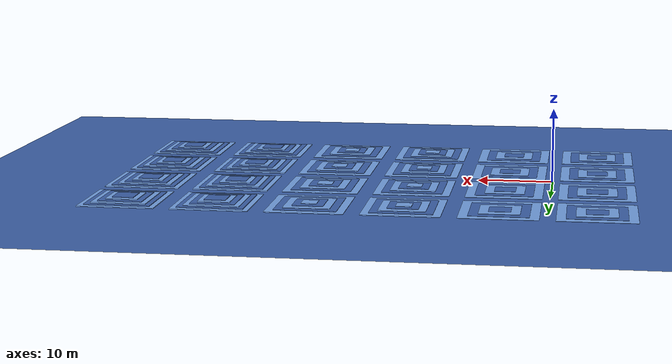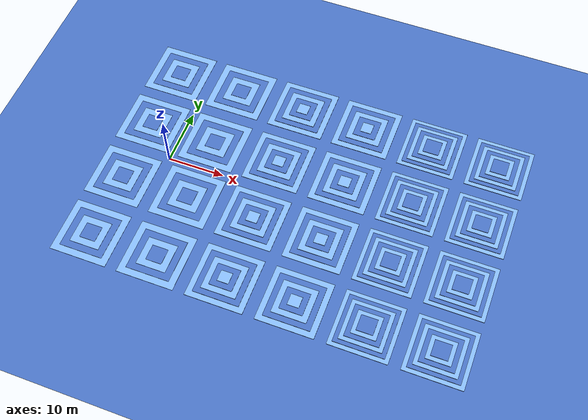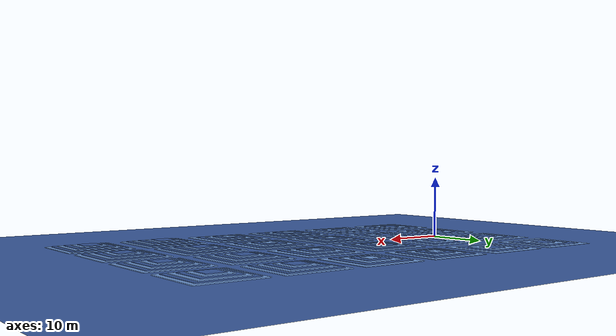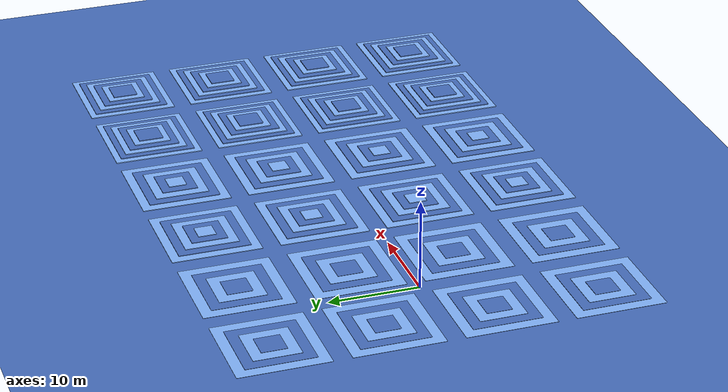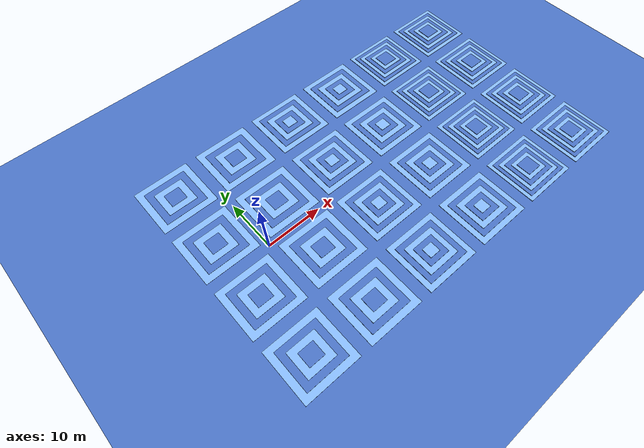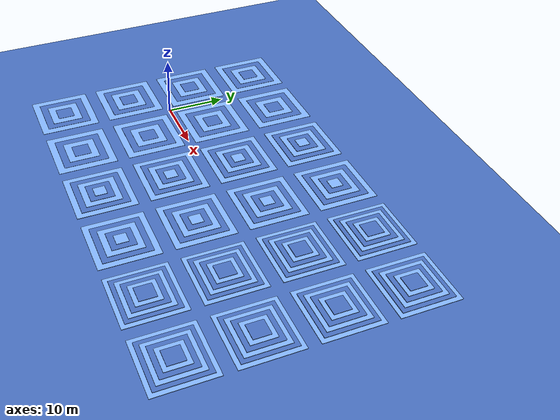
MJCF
<mujoco>
    <extension>
        <plugin plugin="mujoco.sdf.torus">
            <instance name="torus">
                <config key="radius1" value="0.077103"/>
                <config key="radius2" value="0.03"/>
            </instance>
        </plugin>
    </extension>

    <default>
        <default class="kyon_all">
            <joint armature="0.234" frictionloss="4.68" damping="1.7"/>
            <geom condim="3" solref="0.005 1.2" solimp="0.995 0.995 0.001 0.5 2" friction="0.7 0.005 0.001"/>
        </default>
        <default class="wheels">
            <joint armature="0.234" damping="1.7"/>
            <geom condim="3" solref="0.005 1.2" solimp="0.995 0.995 0.001 0.5 2" friction="0.7 0.005 0.001"/>
        </default>
        <default class="terrain">
            <geom condim="3" solref="0.004 1.2" solimp="0.995 0.995 0.001 0.5 2" friction="0.7 0.005 0.001" group="1"/>
        </default>
    </default>

    <asset>
        <mesh name="torus">
            <plugin instance="torus"/>
        </mesh>

        <texture type="skybox" builtin="gradient" rgb1="0.3 0.5 0.7" rgb2="0 0 0" width="512" height="3072"/>
        <texture type="cube" name="body" builtin="flat" mark="cross" rgb1="0.8 0.6 0.4" rgb2="0.8 0.6 0.4" markrgb="1 1 1" width="127" height="762"/>
        <texture type="2d" name="grid" builtin="checker" rgb1="0.7 0.8 0.95" rgb2="0.85 0.9 1" width="512" height="512"/>
        <material name="body" texture="body" texuniform="true" rgba="0.8 0.6 0.4 1"/>
        <material name="grid" texture="grid" texuniform="true" rgba="0.1 0.2 0.3 1"/>
        <material name="ground" texture="grid" texuniform="true" rgba="0.35 0.5 0.75 1"/>
        <material name="step_light" texture="grid" texuniform="true" rgba="0.65 0.82 1 1"/>
        <material name="step_dark" texture="grid" texuniform="true" rgba="0.35 0.5 0.75 1"/>
    </asset>
    <worldbody>
        <geom name="floor" type="plane" size="0 0 0.05" group="1" material="ground" class="terrain"/>
        <!-- Five pyramidal staircases in a row, increasing step height and decreasing tread width -->
    <!-- Five pyramidal staircases in a row, increasing step height and decreasing tread width -->
        <body name="staircourse" pos="0 0 0">
            <!-- Level 0 -->
            <body name="pyramid_lvl0_1" pos="-6 6 0">
                <geom name="lvl0_step_1_0_1" type="box" size="5.0 5.0 0.02" material="step_light" pos="0 0 0.02" class="terrain"/>
                <geom name="lvl0_step_2_0_1" type="box" size="3.8 3.8 0.02" material="step_dark" pos="0 0 0.06" class="terrain"/>
                <geom name="lvl0_step_3_0_1" type="box" size="2.6 2.6 0.02" material="step_light" pos="0 0 0.10" class="terrain"/>
                <geom name="lvl0_step_4_0_1" type="box" size="1.4 1.4 0.02" material="step_dark" pos="0 0 0.14" class="terrain"/>
            </body>
            <body name="pyramid_lvl0_2" pos="-6 -6 0">
                <geom name="lvl0_step_1_0_2" type="box" size="5.0 5.0 0.02" material="step_light" pos="0 0 0.02" class="terrain"/>
                <geom name="lvl0_step_2_0_2" type="box" size="3.8 3.8 0.02" material="step_dark" pos="0 0 0.06" class="terrain"/>
                <geom name="lvl0_step_3_0_2" type="box" size="2.6 2.6 0.02" material="step_light" pos="0 0 0.10" class="terrain"/>
                <geom name="lvl0_step_4_0_2" type="box" size="1.4 1.4 0.02" material="step_dark" pos="0 0 0.14" class="terrain"/>
            </body>
            <body name="pyramid_lvl0_3" pos="6 -6 0">
                <geom name="lvl0_step_1_0_3" type="box" size="5.0 5.0 0.02" material="step_light" pos="0 0 0.02" class="terrain"/>
                <geom name="lvl0_step_2_0_3" type="box" size="3.8 3.8 0.02" material="step_dark" pos="0 0 0.06" class="terrain"/>
                <geom name="lvl0_step_3_0_3" type="box" size="2.6 2.6 0.02" material="step_light" pos="0 0 0.10" class="terrain"/>
                <geom name="lvl0_step_4_0_3" type="box" size="1.4 1.4 0.02" material="step_dark" pos="0 0 0.14" class="terrain"/>
            </body>
            <body name="pyramid_lvl0_4" pos="6 6 0">
                <geom name="lvl0_step_1_0_4" type="box" size="5.0 5.0 0.02" material="step_light" pos="0 0 0.02" class="terrain"/>
                <geom name="lvl0_step_2_0_4" type="box" size="3.8 3.8 0.02" material="step_dark" pos="0 0 0.06" class="terrain"/>
                <geom name="lvl0_step_3_0_4" type="box" size="2.6 2.6 0.02" material="step_light" pos="0 0 0.10" class="terrain"/>
                <geom name="lvl0_step_4_0_4" type="box" size="1.4 1.4 0.02" material="step_dark" pos="0 0 0.14" class="terrain"/>
            </body>
            <body name="pyramid_lvl0_5" pos="-6 18 0">
                <geom name="lvl0_step_1_0_5" type="box" size="5.0 5.0 0.02" material="step_light" pos="0 0 0.02" class="terrain"/>
                <geom name="lvl0_step_2_0_5" type="box" size="3.8 3.8 0.02" material="step_dark" pos="0 0 0.06" class="terrain"/>
                <geom name="lvl0_step_3_0_5" type="box" size="2.6 2.6 0.02" material="step_light" pos="0 0 0.10" class="terrain"/>
                <geom name="lvl0_step_4_0_5" type="box" size="1.4 1.4 0.02" material="step_dark" pos="0 0 0.14" class="terrain"/>
            </body>
            <body name="pyramid_lvl0_6" pos="6 18 0">
                <geom name="lvl0_step_1_0_6" type="box" size="5.0 5.0 0.02" material="step_light" pos="0 0 0.02" class="terrain"/>
                <geom name="lvl0_step_2_0_6" type="box" size="3.8 3.8 0.02" material="step_dark" pos="0 0 0.06" class="terrain"/>
                <geom name="lvl0_step_3_0_6" type="box" size="2.6 2.6 0.02" material="step_light" pos="0 0 0.10" class="terrain"/>
                <geom name="lvl0_step_4_0_6" type="box" size="1.4 1.4 0.02" material="step_dark" pos="0 0 0.14" class="terrain"/>
            </body>
            <body name="pyramid_lvl0_7" pos="6 -18 0">
                <geom name="lvl0_step_1_0_7" type="box" size="5.0 5.0 0.02" material="step_light" pos="0 0 0.02" class="terrain"/>
                <geom name="lvl0_step_2_0_7" type="box" size="3.8 3.8 0.02" material="step_dark" pos="0 0 0.06" class="terrain"/>
                <geom name="lvl0_step_3_0_7" type="box" size="2.6 2.6 0.02" material="step_light" pos="0 0 0.10" class="terrain"/>
                <geom name="lvl0_step_4_0_7" type="box" size="1.4 1.4 0.02" material="step_dark" pos="0 0 0.14" class="terrain"/>
            </body>
            <body name="pyramid_lvl0_8" pos="-6 -18 0">
                <geom name="lvl0_step_1_0_8" type="box" size="5.0 5.0 0.02" material="step_light" pos="0 0 0.02" class="terrain"/>
                <geom name="lvl0_step_2_0_8" type="box" size="3.8 3.8 0.02" material="step_dark" pos="0 0 0.06" class="terrain"/>
                <geom name="lvl0_step_3_0_8" type="box" size="2.6 2.6 0.02" material="step_light" pos="0 0 0.10" class="terrain"/>
                <geom name="lvl0_step_4_0_8" type="box" size="1.4 1.4 0.02" material="step_dark" pos="0 0 0.14" class="terrain"/>
            </body>
            <!-- Level 1: low risers, generous treads, fewer steps -->
            <body name="pyramid_lvl1_1" pos="18 6 0">
                <geom name="lvl1_step_1_1" type="box" size="5.0 5.0 0.04" material="step_light" pos="0 0 0.04" class="terrain"/>
                <geom name="lvl1_step_2_1" type="box" size="4.0 4.0 0.04" material="step_dark" pos="0 0 0.12" class="terrain"/>
                <geom name="lvl1_step_3_1" type="box" size="3.0 3.0 0.04" material="step_light" pos="0 0 0.20" class="terrain"/>
                <geom name="lvl1_step_4_1" type="box" size="2.0 2.0 0.04" material="step_dark" pos="0 0 0.28" class="terrain"/>
                <geom name="lvl1_step_5_1" type="box" size="1.0 1.0 0.04" material="step_light" pos="0 0 0.36" class="terrain"/>
            </body>
            <body name="pyramid_lvl1_2" pos="18 -6 0">
                <geom name="lvl1_step_1_1_2" type="box" size="5.0 5.0 0.04" material="step_light" pos="0 0 0.04" class="terrain"/>
                <geom name="lvl1_step_2_1_2" type="box" size="4.0 4.0 0.04" material="step_dark" pos="0 0 0.12" class="terrain"/>
                <geom name="lvl1_step_3_1_2" type="box" size="3.0 3.0 0.04" material="step_light" pos="0 0 0.20" class="terrain"/>
                <geom name="lvl1_step_4_1_2" type="box" size="2.0 2.0 0.04" material="step_dark" pos="0 0 0.28" class="terrain"/>
                <geom name="lvl1_step_5_1_2" type="box" size="1.0 1.0 0.04" material="step_light" pos="0 0 0.36" class="terrain"/>
            </body>
            <body name="pyramid_lvl1_3" pos="30 -6 0">
                <geom name="lvl1_step_1_1_3" type="box" size="5.0 5.0 0.04" material="step_light" pos="0 0 0.04" class="terrain"/>
                <geom name="lvl1_step_2_1_3" type="box" size="4.0 4.0 0.04" material="step_dark" pos="0 0 0.12" class="terrain"/>
                <geom name="lvl1_step_3_1_3" type="box" size="3.0 3.0 0.04" material="step_light" pos="0 0 0.20" class="terrain"/>
                <geom name="lvl1_step_4_1_3" type="box" size="2.0 2.0 0.04" material="step_dark" pos="0 0 0.28" class="terrain"/>
                <geom name="lvl1_step_5_1_3" type="box" size="1.0 1.0 0.04" material="step_light" pos="0 0 0.36" class="terrain"/>
            </body>
            <body name="pyramid_lvl1_4" pos="30 6 0">
                <geom name="lvl1_step_1_1_4" type="box" size="5.0 5.0 0.04" material="step_light" pos="0 0 0.04" class="terrain"/>
                <geom name="lvl1_step_2_1_4" type="box" size="4.0 4.0 0.04" material="step_dark" pos="0 0 0.12" class="terrain"/>
                <geom name="lvl1_step_3_1_4" type="box" size="3.0 3.0 0.04" material="step_light" pos="0 0 0.20" class="terrain"/>
                <geom name="lvl1_step_4_1_4" type="box" size="2.0 2.0 0.04" material="step_dark" pos="0 0 0.28" class="terrain"/>
                <geom name="lvl1_step_5_1_4" type="box" size="1.0 1.0 0.04" material="step_light" pos="0 0 0.36" class="terrain"/>
            </body>
            <body name="pyramid_lvl1_5" pos="18 18 0">
                <geom name="lvl1_step_1_1_5" type="box" size="5.0 5.0 0.04" material="step_light" pos="0 0 0.04" class="terrain"/>
                <geom name="lvl1_step_2_1_5" type="box" size="4.0 4.0 0.04" material="step_dark" pos="0 0 0.12" class="terrain"/>
                <geom name="lvl1_step_3_1_5" type="box" size="3.0 3.0 0.04" material="step_light" pos="0 0 0.20" class="terrain"/>
                <geom name="lvl1_step_4_1_5" type="box" size="2.0 2.0 0.04" material="step_dark" pos="0 0 0.28" class="terrain"/>
                <geom name="lvl1_step_5_1_5" type="box" size="1.0 1.0 0.04" material="step_light" pos="0 0 0.36" class="terrain"/>
            </body>
            <body name="pyramid_lvl1_6" pos="30 18 0">
                <geom name="lvl1_step_1_1_6" type="box" size="5.0 5.0 0.04" material="step_light" pos="0 0 0.04" class="terrain"/>
                <geom name="lvl1_step_2_1_6" type="box" size="4.0 4.0 0.04" material="step_dark" pos="0 0 0.12" class="terrain"/>
                <geom name="lvl1_step_3_1_6" type="box" size="3.0 3.0 0.04" material="step_light" pos="0 0 0.20" class="terrain"/>
                <geom name="lvl1_step_4_1_6" type="box" size="2.0 2.0 0.04" material="step_dark" pos="0 0 0.28" class="terrain"/>
                <geom name="lvl1_step_5_1_6" type="box" size="1.0 1.0 0.04" material="step_light" pos="0 0 0.36" class="terrain"/>
            </body>
            <body name="pyramid_lvl1_7" pos="18 -18 0">
                <geom name="lvl1_step_1_1_7" type="box" size="5.0 5.0 0.04" material="step_light" pos="0 0 0.04" class="terrain"/>
                <geom name="lvl1_step_2_1_7" type="box" size="4.0 4.0 0.04" material="step_dark" pos="0 0 0.12" class="terrain"/>
                <geom name="lvl1_step_3_1_7" type="box" size="3.0 3.0 0.04" material="step_light" pos="0 0 0.20" class="terrain"/>
                <geom name="lvl1_step_4_1_7" type="box" size="2.0 2.0 0.04" material="step_dark" pos="0 0 0.28" class="terrain"/>
                <geom name="lvl1_step_5_1_7" type="box" size="1.0 1.0 0.04" material="step_light" pos="0 0 0.36" class="terrain"/>
            </body>
            <body name="pyramid_lvl1_8" pos="30 -18 0">
                <geom name="lvl1_step_1_1_8" type="box" size="5.0 5.0 0.04" material="step_light" pos="0 0 0.04" class="terrain"/>
                <geom name="lvl1_step_2_1_8" type="box" size="4.0 4.0 0.04" material="step_dark" pos="0 0 0.12" class="terrain"/>
                <geom name="lvl1_step_3_1_8" type="box" size="3.0 3.0 0.04" material="step_light" pos="0 0 0.20" class="terrain"/>
                <geom name="lvl1_step_4_1_8" type="box" size="2.0 2.0 0.04" material="step_dark" pos="0 0 0.28" class="terrain"/>
                <geom name="lvl1_step_5_1_8" type="box" size="1.0 1.0 0.04" material="step_light" pos="0 0 0.36" class="terrain"/>
            </body>
            <!-- Level 2: medium risers, tighter treads, more steps -->
            <body name="pyramid_lvl2_1" pos="42 -6 0">
                <geom name="lvl2_step_1_2_1" type="box" size="5.0 5.0 0.05" material="step_light" pos="0 0 0.05" class="terrain"/>
                <geom name="lvl2_step_2_2_1" type="box" size="4.3 4.3 0.05" material="step_dark" pos="0 0 0.15" class="terrain"/>
                <geom name="lvl2_step_3_2_1" type="box" size="3.6 3.6 0.05" material="step_light" pos="0 0 0.25" class="terrain"/>
                <geom name="lvl2_step_4_2_1" type="box" size="2.9 2.9 0.05" material="step_dark" pos="0 0 0.35" class="terrain"/>
                <geom name="lvl2_step_5_2_1" type="box" size="2.1 2.1 0.05" material="step_light" pos="0 0 0.45" class="terrain"/>
                <geom name="lvl2_step_6_2_1" type="box" size="1.4 1.4 0.05" material="step_dark" pos="0 0 0.55" class="terrain"/>
            </body>
            <body name="pyramid_lvl2_2" pos="42 6 0">
                <geom name="lvl2_step_1_2_2" type="box" size="5.0 5.0 0.05" material="step_light" pos="0 0 0.05" class="terrain"/>
                <geom name="lvl2_step_2_2_2" type="box" size="4.3 4.3 0.05" material="step_dark" pos="0 0 0.15" class="terrain"/>
                <geom name="lvl2_step_3_2_2" type="box" size="3.6 3.6 0.05" material="step_light" pos="0 0 0.25" class="terrain"/>
                <geom name="lvl2_step_4_2_2" type="box" size="2.9 2.9 0.05" material="step_dark" pos="0 0 0.35" class="terrain"/>
                <geom name="lvl2_step_5_2_2" type="box" size="2.1 2.1 0.05" material="step_light" pos="0 0 0.45" class="terrain"/>
                <geom name="lvl2_step_6_2_2" type="box" size="1.4 1.4 0.05" material="step_dark" pos="0 0 0.55" class="terrain"/>
            </body>
            <body name="pyramid_lvl2_3" pos="54 -6 0">
                <geom name="lvl2_step_1_2_3" type="box" size="5.0 5.0 0.05" material="step_light" pos="0 0 0.05" class="terrain"/>
                <geom name="lvl2_step_2_2_3" type="box" size="4.3 4.3 0.05" material="step_dark" pos="0 0 0.15" class="terrain"/>
                <geom name="lvl2_step_3_2_3" type="box" size="3.6 3.6 0.05" material="step_light" pos="0 0 0.25" class="terrain"/>
                <geom name="lvl2_step_4_2_3" type="box" size="2.9 2.9 0.05" material="step_dark" pos="0 0 0.35" class="terrain"/>
                <geom name="lvl2_step_5_2_3" type="box" size="2.1 2.1 0.05" material="step_light" pos="0 0 0.45" class="terrain"/>
                <geom name="lvl2_step_6_2_3" type="box" size="1.4 1.4 0.05" material="step_dark" pos="0 0 0.55" class="terrain"/>
            </body>
            <body name="pyramid_lvl2_4" pos="54 6 0">
                <geom name="lvl2_step_1_2_4" type="box" size="5.0 5.0 0.05" material="step_light" pos="0 0 0.05" class="terrain"/>
                <geom name="lvl2_step_2_2_4" type="box" size="4.3 4.3 0.05" material="step_dark" pos="0 0 0.15" class="terrain"/>
                <geom name="lvl2_step_3_2_4" type="box" size="3.6 3.6 0.05" material="step_light" pos="0 0 0.25" class="terrain"/>
                <geom name="lvl2_step_4_2_4" type="box" size="2.9 2.9 0.05" material="step_dark" pos="0 0 0.35" class="terrain"/>
                <geom name="lvl2_step_5_2_4" type="box" size="2.1 2.1 0.05" material="step_light" pos="0 0 0.45" class="terrain"/>
                <geom name="lvl2_step_6_2_4" type="box" size="1.4 1.4 0.05" material="step_dark" pos="0 0 0.55" class="terrain"/>
            </body>
            <body name="pyramid_lvl2_5" pos="42 18 0">
                <geom name="lvl2_step_1_2_5" type="box" size="5.0 5.0 0.05" material="step_light" pos="0 0 0.05" class="terrain"/>
                <geom name="lvl2_step_2_2_5" type="box" size="4.3 4.3 0.05" material="step_dark" pos="0 0 0.15" class="terrain"/>
                <geom name="lvl2_step_3_2_5" type="box" size="3.6 3.6 0.05" material="step_light" pos="0 0 0.25" class="terrain"/>
                <geom name="lvl2_step_4_2_5" type="box" size="2.9 2.9 0.05" material="step_dark" pos="0 0 0.35" class="terrain"/>
                <geom name="lvl2_step_5_2_5" type="box" size="2.1 2.1 0.05" material="step_light" pos="0 0 0.45" class="terrain"/>
                <geom name="lvl2_step_6_2_5" type="box" size="1.4 1.4 0.05" material="step_dark" pos="0 0 0.55" class="terrain"/>
            </body>
            <body name="pyramid_lvl2_6" pos="54 18 0">
                <geom name="lvl2_step_1_2_6" type="box" size="5.0 5.0 0.05" material="step_light" pos="0 0 0.05" class="terrain"/>
                <geom name="lvl2_step_2_2_6" type="box" size="4.3 4.3 0.05" material="step_dark" pos="0 0 0.15" class="terrain"/>
                <geom name="lvl2_step_3_2_6" type="box" size="3.6 3.6 0.05" material="step_light" pos="0 0 0.25" class="terrain"/>
                <geom name="lvl2_step_4_2_6" type="box" size="2.9 2.9 0.05" material="step_dark" pos="0 0 0.35" class="terrain"/>
                <geom name="lvl2_step_5_2_6" type="box" size="2.1 2.1 0.05" material="step_light" pos="0 0 0.45" class="terrain"/>
                <geom name="lvl2_step_6_2_6" type="box" size="1.4 1.4 0.05" material="step_dark" pos="0 0 0.55" class="terrain"/>
            </body>
            <body name="pyramid_lvl2_7" pos="42 -18 0">
                <geom name="lvl2_step_1_2_7" type="box" size="5.0 5.0 0.05" material="step_light" pos="0 0 0.05" class="terrain"/>
                <geom name="lvl2_step_2_2_7" type="box" size="4.3 4.3 0.05" material="step_dark" pos="0 0 0.15" class="terrain"/>
                <geom name="lvl2_step_3_2_7" type="box" size="3.6 3.6 0.05" material="step_light" pos="0 0 0.25" class="terrain"/>
                <geom name="lvl2_step_4_2_7" type="box" size="2.9 2.9 0.05" material="step_dark" pos="0 0 0.35" class="terrain"/>
                <geom name="lvl2_step_5_2_7" type="box" size="2.1 2.1 0.05" material="step_light" pos="0 0 0.45" class="terrain"/>
                <geom name="lvl2_step_6_2_7" type="box" size="1.4 1.4 0.05" material="step_dark" pos="0 0 0.55" class="terrain"/>
            </body>
            <body name="pyramid_lvl2_8" pos="54 -18 0">
                <geom name="lvl2_step_1_2_8" type="box" size="5.0 5.0 0.05" material="step_light" pos="0 0 0.05" class="terrain"/>
                <geom name="lvl2_step_2_2_8" type="box" size="4.3 4.3 0.05" material="step_dark" pos="0 0 0.15" class="terrain"/>
                <geom name="lvl2_step_3_2_8" type="box" size="3.6 3.6 0.05" material="step_light" pos="0 0 0.25" class="terrain"/>
                <geom name="lvl2_step_4_2_8" type="box" size="2.9 2.9 0.05" material="step_dark" pos="0 0 0.35" class="terrain"/>
                <geom name="lvl2_step_5_2_8" type="box" size="2.1 2.1 0.05" material="step_light" pos="0 0 0.45" class="terrain"/>
                <geom name="lvl2_step_6_2_8" type="box" size="1.4 1.4 0.05" material="step_dark" pos="0 0 0.55" class="terrain"/>
            </body>

        </body>
    </worldbody>
    <visual>
    	<headlight ambient="0.5 0.5 0.5"/>
    </visual>
</mujoco>
